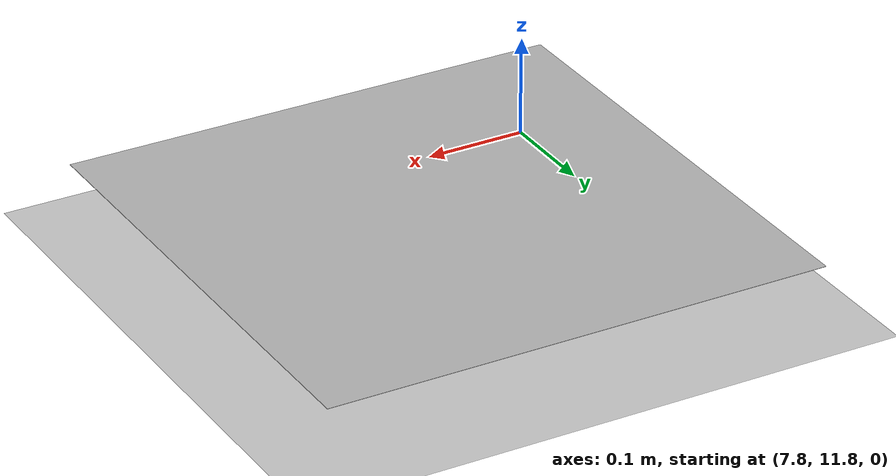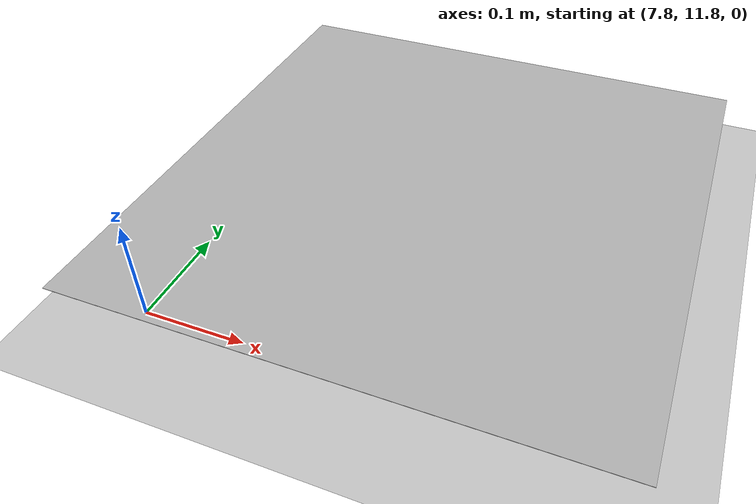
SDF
<?xml version="1.0" ?>
<sdf version="1.5">
  <world name="default">
    <!-- A global light source -->
    <include>
      <uri>model://sun</uri>
    </include>
    <!-- A ground plane -->
    <include>
      <uri>model://ground_plane</uri>
    </include>
   <model name="ARtag6">
      <static>true</static>
      <pose>8 12 0.06 0 0 0</pose>
      <link name="link">
         <collision name="collision">
            <geometry>
               <plane>
                  <normal>0 0 1</normal>
                  <size>0.5 0.5</size>
               </plane>
            </geometry>
            <surface>
               <friction>
                  <ode>
                     <mu>100</mu>
                     <mu2>50</mu2>
                  </ode>
               </friction>
            </surface>
         </collision>
         <visual name="visual">
            <cast_shadows>false</cast_shadows>
            <geometry>
               <plane>
                  <normal>0 0 1</normal>
                  <size>0.5 0.5</size>
               </plane>
            </geometry>
            <material>
               <script>
                  <uri>model://ARtag6/materials/scripts</uri>
                  <uri>model://ARtag6/materials/textures/</uri>
                  <name>ARtag6/Image</name>
               </script>
            </material>
         </visual>
      </link>
   </model>
  </world>
</sdf>
